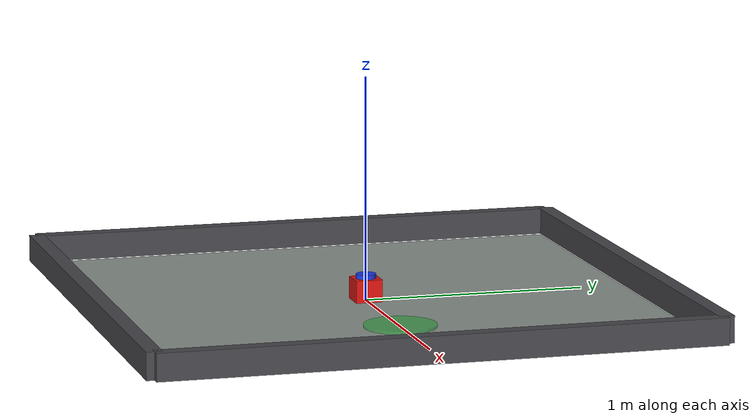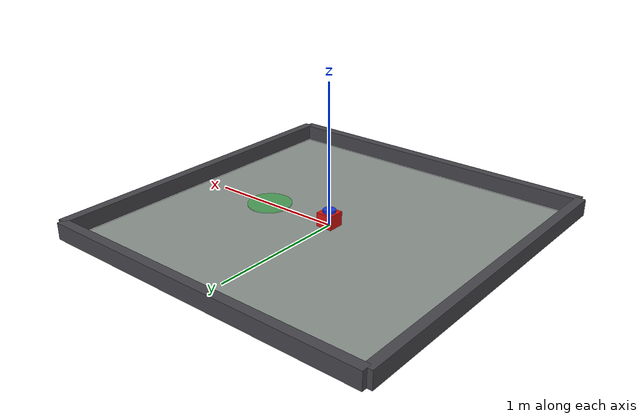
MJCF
<mujoco model="text2mujoco_push_world_5f2985fce738">
  <!--generator=text2mujoco-0.1.0; schema=1.0; seed=7; run_id=5f2985fce738-->
  <compiler angle="radian" coordinate="local" />
  <option gravity="0 0 -9.81" timestep="0.002" integrator="implicitfast" cone="elliptic" />
  <size njmax="2000" nconmax="200" />
  <default>
    <geom condim="3" friction="0.28 0.005 0.0001" solref="0.012 1" solimp="0.9 0.95 0.001" />
    <joint damping="3.0" armature="0.01" />
  </default>
  <asset>
    <material name="floor_mat" rgba="0.55 0.58 0.56 1" />
    <material name="wall_mat" rgba="0.28 0.28 0.3 1" />
    <material name="box_mat" rgba="0.86 0.08 0.06 1" />
    <material name="target_mat" rgba="0.1 0.7 0.18 0.5" />
    <material name="pusher_mat" rgba="0.1 0.22 0.9 1" />
  </asset>
  <worldbody>
    <light name="key_light" pos="0 -2 3" dir="0 1 -1" />
    <camera name="overview" pos="0 -2.8 2.1" xyaxes="1 0 0 0 0.62 0.78" />
    <geom name="floor" type="plane" size="1.2 1.2 0.02" material="floor_mat" friction="0.28 0.005 0.0001" />
    <geom name="wall_north" type="box" pos="0 1.235 0.06" size="1.235 0.035 0.06" material="wall_mat" />
    <geom name="wall_south" type="box" pos="0 -1.235 0.06" size="1.235 0.035 0.06" material="wall_mat" />
    <geom name="wall_east" type="box" pos="1.235 0 0.06" size="0.035 1.235 0.06" material="wall_mat" />
    <geom name="wall_west" type="box" pos="-1.235 0 0.06" size="0.035 1.235 0.06" material="wall_mat" />
    <body name="target" pos="0.55 0 0.006">
      <geom name="target_visual" type="cylinder" size="0.16 0.006" material="target_mat" contype="0" conaffinity="0" />
    </body>
    <body name="pusher_x_body" pos="0 0 0.06">
      <inertial pos="0 0 0" mass="0.05" diaginertia="0.0001 0.0001 0.0001" />
      <joint name="pusher_x" type="slide" axis="1 0 0" limited="true" range="-1.2 1.2" />
      <body name="pusher" pos="0 0 0">
        <joint name="pusher_y" type="slide" axis="0 1 0" limited="true" range="-1.2 1.2" />
        <geom name="pusher_collision" type="cylinder" size="0.045 0.06" mass="1.0" material="pusher_mat" friction="0.28 0.005 0.0001" />
      </body>
    </body>
    <body name="box" pos="0 0 0.05">
      <freejoint name="box_free" />
      <geom name="box_collision" type="box" size="0.06 0.06 0.05" mass="0.35" material="box_mat" friction="0.28 0.005 0.0001" />
    </body>
  </worldbody>
  <actuator>
    <position name="move_x" joint="pusher_x" kp="650" kv="55" ctrllimited="true" ctrlrange="-1.2 1.2" forcelimited="true" forcerange="-12 12" />
    <position name="move_y" joint="pusher_y" kp="650" kv="55" ctrllimited="true" ctrlrange="-1.2 1.2" forcelimited="true" forcerange="-12 12" />
  </actuator>
</mujoco>
